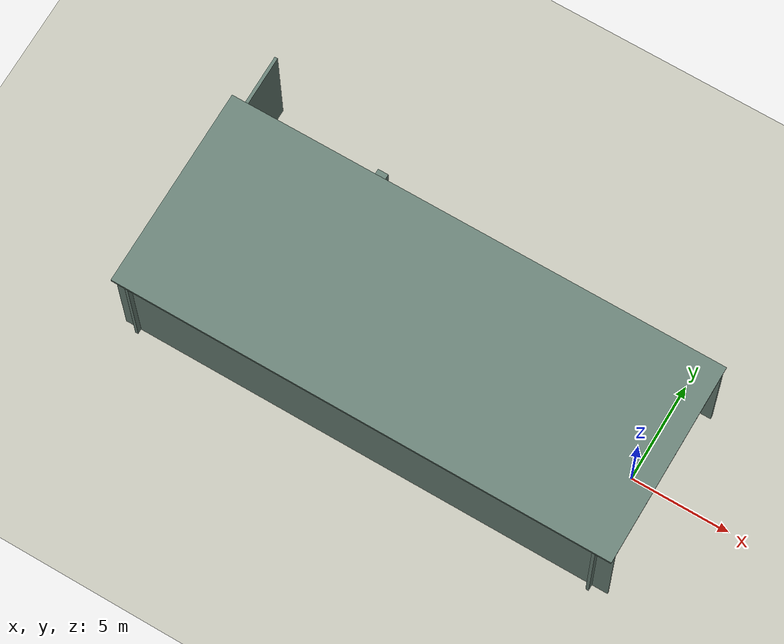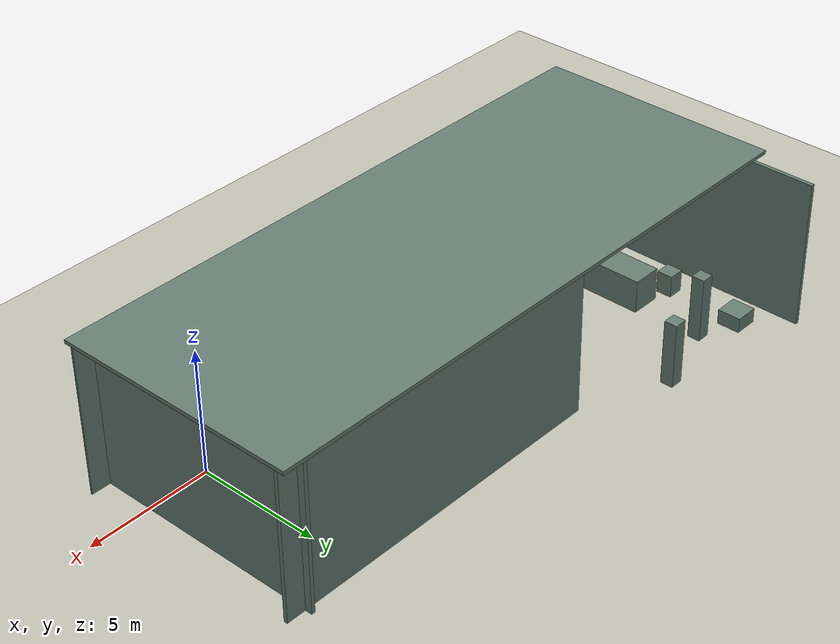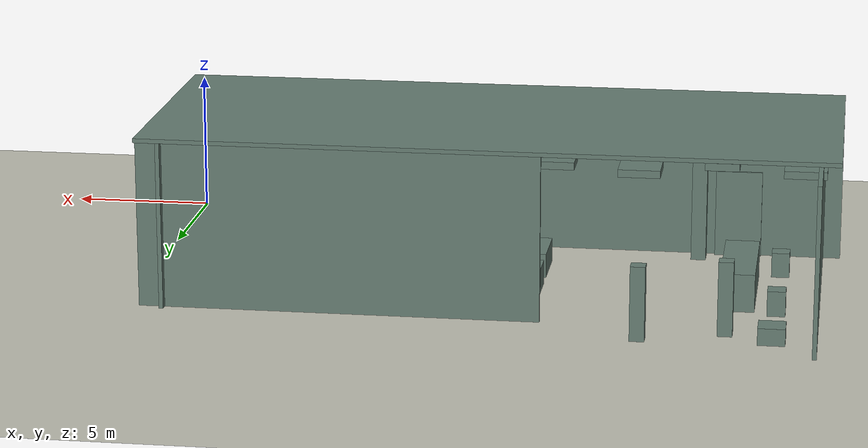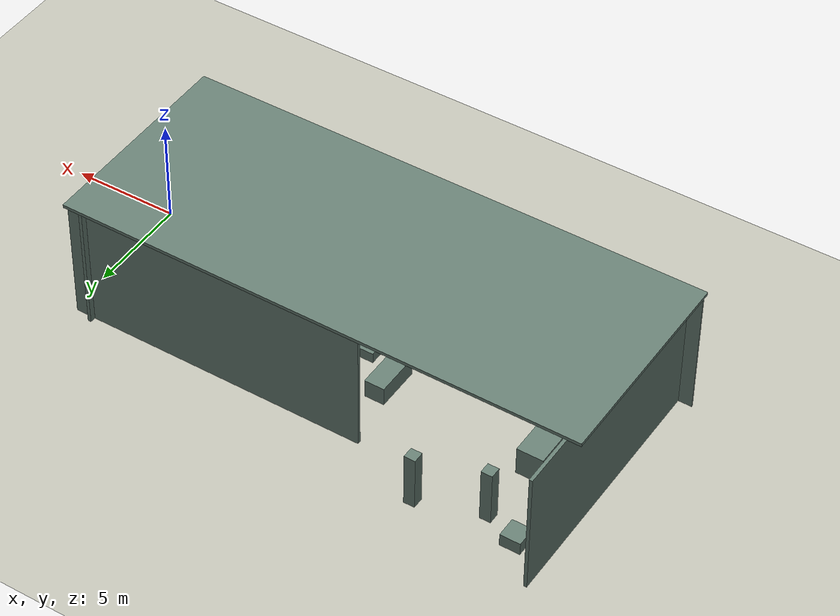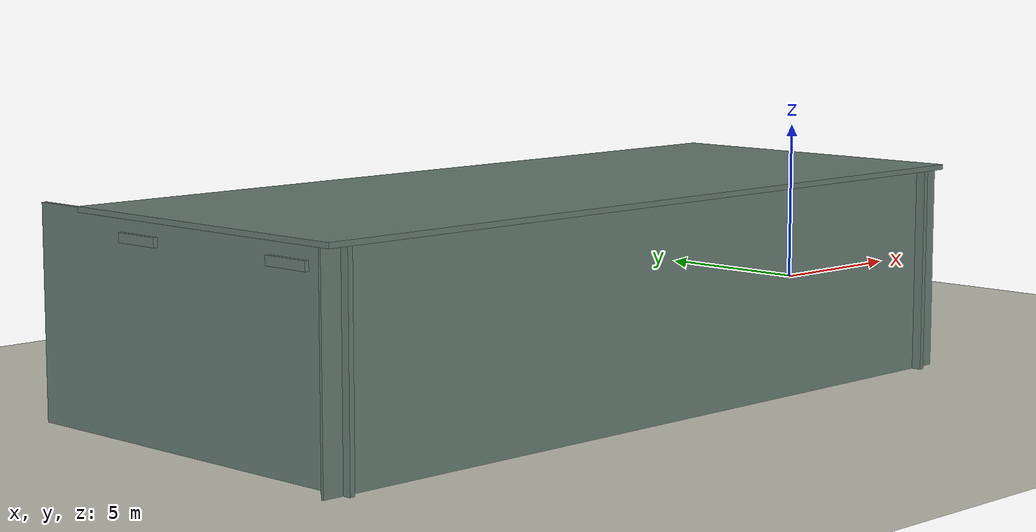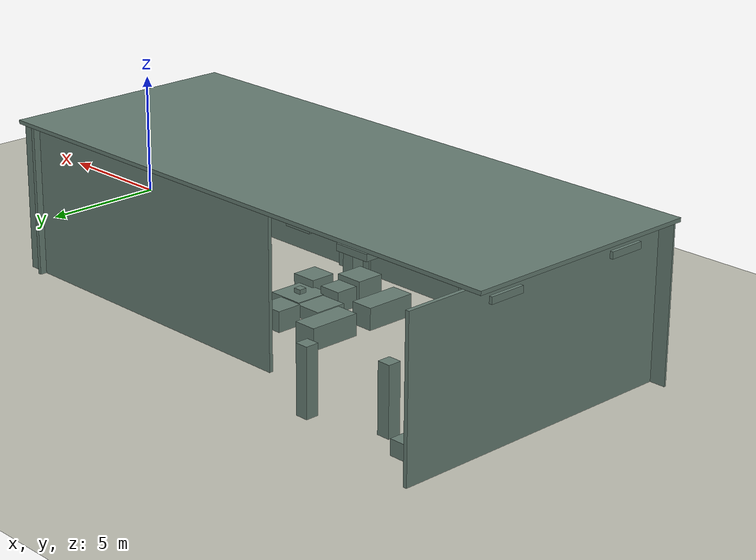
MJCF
<mujoco model="metric quadrotor world"><option timestep=".004" gravity="0 0 -9.81" /><visual /><worldbody><light pos="0 0 12" dir="0 0 -1" directional="true" /><geom name="floor" type="plane" pos="0 0 -2.5382169319971153" size="0 0 .1" rgba=".75 .75 .70 1" /><geom name="obstacle_0" type="box" pos="-11.4 0.2999999999999998 3.8697291394767395" size="12.9 5.2 0.08000000000000007" rgba=".40 .49 .45 1" /><geom name="obstacle_1" type="box" pos="-11.4 -4.55 0.6257561037398123" size="12.9 0.040000000000000036 3.1639730357369276" rgba=".40 .49 .45 1" /><geom name="obstacle_2" type="box" pos="-6.0 5.13 0.6257561037398123" size="7.5 0.08000000000000007 3.1639730357369276" rgba=".40 .49 .45 1" /><geom name="obstacle_3" type="box" pos="-23.56 1.6500000000000004 0.6257561037398123" size="0.0799999999999983 6.5 3.1639730357369276" rgba=".40 .49 .45 1" /><geom name="obstacle_4" type="box" pos="0.6 0.2999999999999998 0.6257561037398123" size="0.07999999999999996 5.2 3.1639730357369276" rgba=".40 .49 .45 1" /><geom name="obstacle_5" type="box" pos="-20.3 -4.4 -0.8382169319971153" size="0.8999999999999986 0.04999999999999982 1.7" rgba=".40 .49 .45 1" /><geom name="obstacle_6" type="box" pos="-8.0 -4.4 -0.8382169319971153" size="0.9000000000000004 0.04999999999999982 1.7" rgba=".40 .49 .45 1" /><geom name="obstacle_7" type="box" pos="-18.8 -3.83 0.6257561037398123" size="0.28999999999999915 0.29000000000000004 3.1639730357369276" rgba=".40 .49 .45 1" /><geom name="obstacle_8" type="box" pos="-8.5 -3.83 0.6257561037398123" size="0.28999999999999915 0.29000000000000004 3.1639730357369276" rgba=".40 .49 .45 1" /><geom name="obstacle_9" type="box" pos="-20.6 0.7000000000000001 -1.8182169319971153" size="0.6499999999999986 2.25 0.72" rgba=".40 .49 .45 1" /><geom name="obstacle_10" type="box" pos="-12.65 -1.4500000000000002 -2.0682169319971155" size="0.5 1.125 0.46999999999999986" rgba=".40 .49 .45 1" /><geom name="obstacle_11" type="box" pos="-12.65 1.5499999999999998 -2.0682169319971155" size="0.5 1.125 0.46999999999999986" rgba=".40 .49 .45 1" /><geom name="obstacle_12" type="box" pos="-9.35 -0.09999999999999998 -2.258216931997115" size="0.8000000000000007 0.8 0.28000000000000014" rgba=".40 .49 .45 1" /><geom name="obstacle_13" type="box" pos="-8.8 -1.35 -2.0982169319971153" size="0.5600000000000005 0.56 0.43999999999999995" rgba=".40 .49 .45 1" /><geom name="obstacle_14" type="box" pos="-10.492090321105152 -1.1307727565290244 -2.0982169319971153" size="0.5 0.5 0.43999999999999995" rgba=".40 .49 .45 1" /><geom name="obstacle_15" type="box" pos="-10.64893281032411 0.08918643397313242 -2.273216931997115" size="0.6999999999999993 0.7 0.2650000000000001" rgba=".40 .49 .45 1" /><geom name="obstacle_16" type="box" pos="-9.722860186297781 0.9361896777856887 -2.273216931997115" size="0.5250000000000004 0.525 0.2650000000000001" rgba=".40 .49 .45 1" /><geom name="obstacle_17" type="box" pos="-10.336116682272957 1.8553966447702026 -2.0982169319971153" size="0.5500000000000007 0.55 0.43999999999999995" rgba=".40 .49 .45 1" /><geom name="obstacle_18" type="box" pos="-3.59 0.5799999999999998 -2.258216931997115" size="0.7999999999999998 0.8 0.28000000000000014" rgba=".40 .49 .45 1" /><geom name="obstacle_19" type="box" pos="-4.209516855517914 1.6993531330747065 -2.2632169319971154" size="0.4900000000000002 0.49 0.2749999999999999" rgba=".40 .49 .45 1" /><geom name="obstacle_20" type="box" pos="-3.1643621592771947 1.9285946234859532 -2.088216931997115" size="0.5499999999999998 0.55 0.45000000000000007" rgba=".40 .49 .45 1" /><geom name="obstacle_21" type="box" pos="-2.096120985204892 1.5920522434393405 -2.088216931997115" size="0.54 0.5400000000000001 0.45000000000000007" rgba=".40 .49 .45 1" /><geom name="obstacle_22" type="box" pos="-9.96 -2.82 -2.1382169319971154" size="0.625 0.625 0.3999999999999999" rgba=".40 .49 .45 1" /><geom name="obstacle_23" type="box" pos="-6.9 4.16 -2.0182169319971153" size="0.40000000000000036 0.40000000000000013 0.52" rgba=".40 .49 .45 1" /><geom name="obstacle_24" type="box" pos="-1.15 2.3 -1.8882169319971154" size="0.31000000000000005 0.3500000000000001 0.6499999999999999" rgba=".40 .49 .45 1" /><geom name="obstacle_25" type="box" pos="-22.06 -1.95 -2.0582169319971153" size="0.33999999999999986 0.3400000000000001 0.48" rgba=".40 .49 .45 1" /><geom name="obstacle_26" type="box" pos="-22.06 3.0 -2.0582169319971153" size="0.33999999999999986 0.33999999999999986 0.48" rgba=".40 .49 .45 1" /><geom name="obstacle_27" type="box" pos="-22.0 6.3 -2.2182169319971154" size="0.5 0.5 0.31999999999999995" rgba=".40 .49 .45 1" /><geom name="obstacle_28" type="box" pos="-1.4500000000000002 1.0 3.3097291394767394" size="0.6250000000000001 0.625 0.14000000000000012" rgba=".40 .49 .45 1" /><geom name="obstacle_29" type="box" pos="-2.0 3.5999999999999996 3.3097291394767394" size="0.625 0.6249999999999998 0.14000000000000012" rgba=".40 .49 .45 1" /><geom name="obstacle_30" type="box" pos="-5.0 -2.6 3.1497291394767393" size="0.7750000000000004 0.7749999999999999 0.14000000000000012" rgba=".40 .49 .45 1" /><geom name="obstacle_31" type="box" pos="-4.45 1.0 3.1497291394767393" size="0.7750000000000001 0.7749999999999999 0.14000000000000012" rgba=".40 .49 .45 1" /><geom name="obstacle_32" type="box" pos="-5.0 3.6 3.1497291394767393" size="0.7750000000000004 0.7749999999999999 0.14000000000000012" rgba=".40 .49 .45 1" /><geom name="obstacle_33" type="box" pos="-8.0 -2.6 2.9897291394767396" size="0.625 0.625 0.14000000000000012" rgba=".40 .49 .45 1" /><geom name="obstacle_34" type="box" pos="-7.449999999999999 1.0 2.9897291394767396" size="0.6249999999999996 0.625 0.14000000000000012" rgba=".40 .49 .45 1" /><geom name="obstacle_35" type="box" pos="-8.0 3.5999999999999996 2.9897291394767396" size="0.625 0.6249999999999998 0.14000000000000012" rgba=".40 .49 .45 1" /><geom name="obstacle_36" type="box" pos="-11.0 -2.6 3.3097291394767394" size="0.7750000000000004 0.7749999999999999 0.14000000000000012" rgba=".40 .49 .45 1" /><geom name="obstacle_37" type="box" pos="-10.45 1.0 3.3097291394767394" size="0.7750000000000004 0.7749999999999999 0.14000000000000012" rgba=".40 .49 .45 1" /><geom name="obstacle_38" type="box" pos="-14.0 -2.6 3.1497291394767393" size="0.625 0.625 0.14000000000000012" rgba=".40 .49 .45 1" /><geom name="obstacle_39" type="box" pos="-14.0 3.5999999999999996 3.1497291394767393" size="0.625 0.6249999999999998 0.14000000000000012" rgba=".40 .49 .45 1" /><geom name="obstacle_40" type="box" pos="-16.45 1.0 2.9897291394767396" size="0.7749999999999995 0.7749999999999999 0.14000000000000012" rgba=".40 .49 .45 1" /><geom name="obstacle_41" type="box" pos="-17.0 3.6 2.9897291394767396" size="0.7749999999999986 0.7749999999999999 0.14000000000000012" rgba=".40 .49 .45 1" /><geom name="obstacle_42" type="box" pos="-20.0 -2.6 3.3097291394767394" size="0.625 0.625 0.14000000000000012" rgba=".40 .49 .45 1" /><geom name="obstacle_43" type="box" pos="-19.45 1.0 3.3097291394767394" size="0.625 0.625 0.14000000000000012" rgba=".40 .49 .45 1" /><geom name="obstacle_44" type="box" pos="-20.0 3.5999999999999996 3.3097291394767394" size="0.625 0.6249999999999998 0.14000000000000012" rgba=".40 .49 .45 1" /><geom name="obstacle_45" type="box" pos="-23.0 -2.6 3.1497291394767393" size="0.7749999999999986 0.7749999999999999 0.14000000000000012" rgba=".40 .49 .45 1" /><geom name="obstacle_46" type="box" pos="-22.45 1.0 3.1497291394767393" size="0.7749999999999986 0.7749999999999999 0.14000000000000012" rgba=".40 .49 .45 1" /><geom name="obstacle_47" type="box" pos="-23.0 3.6 3.1497291394767393" size="0.7749999999999986 0.7749999999999999 0.14000000000000012" rgba=".40 .49 .45 1" /><geom name="obstacle_48" type="box" pos="-20.3 5.7 -1.1382169319971154" size="0.2749999999999986 0.27500000000000036 1.4" rgba=".40 .49 .45 1" /><geom name="obstacle_49" type="box" pos="-17.2 6.7 -1.1382169319971154" size="0.2749999999999986 0.27500000000000036 1.4" rgba=".40 .49 .45 1" /><geom name="obstacle_50" type="box" pos="-9.35 -0.1 -1.8832169319971153" size="0.16999999999999993 0.17 0.10000000000000009" rgba=".40 .49 .45 1" /><body name="quad" pos="0 0 2"><freejoint /><inertial pos="0 0 0" mass="1" diaginertia=".02 .02 .035" /><geom name="quad_body" type="sphere" size=".14" rgba=".1 .2 .8 1" /><geom name="arm_0" type="capsule" fromto="0 0 0 0.18 0.18 0.0" size=".018" rgba=".15 .15 .17 1" /><site name="motor_0" pos="0.18 0.18 0.0" size=".04" /><geom name="arm_1" type="capsule" fromto="0 0 0 -0.18 0.18 0.0" size=".018" rgba=".15 .15 .17 1" /><site name="motor_1" pos="-0.18 0.18 0.0" size=".04" /><geom name="arm_2" type="capsule" fromto="0 0 0 -0.18 -0.18 0.0" size=".018" rgba=".15 .15 .17 1" /><site name="motor_2" pos="-0.18 -0.18 0.0" size=".04" /><geom name="arm_3" type="capsule" fromto="0 0 0 0.18 -0.18 0.0" size=".018" rgba=".15 .15 .17 1" /><site name="motor_3" pos="0.18 -0.18 0.0" size=".04" /></body></worldbody><actuator><general name="thrust_0" site="motor_0" gear="0 0 1 0 0 0.02" ctrllimited="true" ctrlrange="0 8" /><general name="thrust_1" site="motor_1" gear="0 0 1 0 0 -0.02" ctrllimited="true" ctrlrange="0 8" /><general name="thrust_2" site="motor_2" gear="0 0 1 0 0 0.02" ctrllimited="true" ctrlrange="0 8" /><general name="thrust_3" site="motor_3" gear="0 0 1 0 0 -0.02" ctrllimited="true" ctrlrange="0 8" /></actuator></mujoco>
